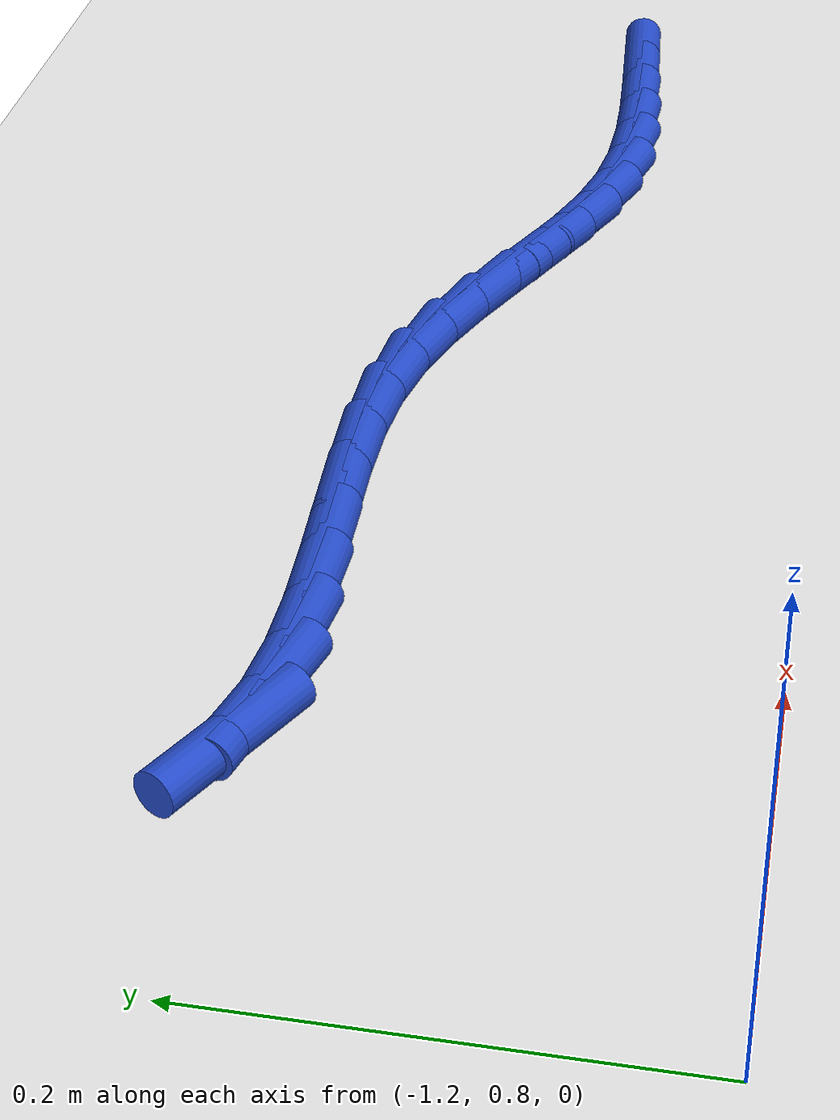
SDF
<sdf version="1.6">
 <world name="default">
  <model name="ground_plane">
   <static>1</static>
   <link name="link">
    <collision name="collision">
     <geometry><plane><normal>0 0 1</normal><size>100 100</size></plane></geometry>
     <surface><friction><ode><mu>100</mu><mu2>50</mu2></ode></friction></surface>
    </collision>
    <visual name="visual">
     <cast_shadows>0</cast_shadows>
     <geometry><plane><normal>0 0 1</normal><size>100 100</size></plane></geometry>
     <material>
      <script><uri>file://media/materials/scripts/gazebo.material</uri><name>Gazebo/WhiteGlow</name></script>
     </material>
    </visual>
   </link>
  </model>
  <model name="line">
   <link name="link_39">
    <pose>-0.465253103192613 0.9165433758420046 0.01 0 1.57 0.08127308688358488</pose>
    <collision name="collision">
     <geometry><cylinder><radius>0.01</radius><length>0.08</length></cylinder></geometry>
    </collision>
    <visual name="visual">
     <material>
      <script><name>Gazebo/Blue</name><uri>file://media/materials/scripts/gazebo.material</uri></script>
     </material>
     <geometry><cylinder><radius>0.01</radius><length>0.08</length></cylinder></geometry>
    </visual>
   </link>
   <link name="link_40">
    <pose>-0.49563035522320587 0.9140690725473415 0.01 0 1.57 0.06996432766600989</pose>
    <collision name="collision">
     <geometry><cylinder><radius>0.01</radius><length>0.08</length></cylinder></geometry>
    </collision>
    <visual name="visual">
     <material>
      <script><name>Gazebo/Blue</name><uri>file://media/materials/scripts/gazebo.material</uri></script>
     </material>
     <geometry><cylinder><radius>0.01</radius><length>0.08</length></cylinder></geometry>
    </visual>
   </link>
   <link name="link_41">
    <pose>-0.5263170755426992 0.9119185867652225 0.01 0 1.57 0.03216959325350356</pose>
    <collision name="collision">
     <geometry><cylinder><radius>0.01</radius><length>0.08</length></cylinder></geometry>
    </collision>
    <visual name="visual">
     <material>
      <script><name>Gazebo/Blue</name><uri>file://media/materials/scripts/gazebo.material</uri></script>
     </material>
     <geometry><cylinder><radius>0.01</radius><length>0.08</length></cylinder></geometry>
    </visual>
   </link>
   <link name="link_42">
    <pose>-0.5568290466043099 0.9109366903275481 0.01 0 1.57 -0.03453771581233891</pose>
    <collision name="collision">
     <geometry><cylinder><radius>0.01</radius><length>0.08</length></cylinder></geometry>
    </collision>
    <visual name="visual">
     <material>
      <script><name>Gazebo/Blue</name><uri>file://media/materials/scripts/gazebo.material</uri></script>
     </material>
     <geometry><cylinder><radius>0.01</radius><length>0.08</length></cylinder></geometry>
    </visual>
   </link>
   <link name="link_43">
    <pose>-0.5866820508612548 0.91196815506622 0.01 0 1.57 -0.13461835076470766</pose>
    <collision name="collision">
     <geometry><cylinder><radius>0.01</radius><length>0.08</length></cylinder></geometry>
    </collision>
    <visual name="visual">
     <material>
      <script><name>Gazebo/Blue</name><uri>file://media/materials/scripts/gazebo.material</uri></script>
     </material>
     <geometry><cylinder><radius>0.01</radius><length>0.08</length></cylinder></geometry>
    </visual>
   </link>
   <link name="link_44">
    <pose>-0.6153924740073257 0.9158566223719713 0.01 0 1.57 -0.2557452301849412</pose>
    <collision name="collision">
     <geometry><cylinder><radius>0.01</radius><length>0.08</length></cylinder></geometry>
    </collision>
    <visual name="visual">
     <material>
      <script><name>Gazebo/Blue</name><uri>file://media/materials/scripts/gazebo.material</uri></script>
     </material>
     <geometry><cylinder><radius>0.01</radius><length>0.08</length></cylinder></geometry>
    </visual>
   </link>
   <link name="link_45">
    <pose>-0.6427143023420219 0.9230004825749244 0.01 0 1.57 -0.3527483318246726</pose>
    <collision name="collision">
     <geometry><cylinder><radius>0.01</radius><length>0.08</length></cylinder></geometry>
    </collision>
    <visual name="visual">
     <material>
      <script><name>Gazebo/Blue</name><uri>file://media/materials/scripts/gazebo.material</uri></script>
     </material>
     <geometry><cylinder><radius>0.01</radius><length>0.08</length></cylinder></geometry>
    </visual>
   </link>
   <link name="link_46">
    <pose>-0.668999620255764 0.9326773215840979 0.01 0 1.57 -0.41478934054829303</pose>
    <collision name="collision">
     <geometry><cylinder><radius>0.01</radius><length>0.08</length></cylinder></geometry>
    </collision>
    <visual name="visual">
     <material>
      <script><name>Gazebo/Blue</name><uri>file://media/materials/scripts/gazebo.material</uri></script>
     </material>
     <geometry><cylinder><radius>0.01</radius><length>0.08</length></cylinder></geometry>
    </visual>
   </link>
   <link name="link_47">
    <pose>-0.6946931450149568 0.9439911361623159 0.01 0 1.57 -0.44089733472905185</pose>
    <collision name="collision">
     <geometry><cylinder><radius>0.01</radius><length>0.08</length></cylinder></geometry>
    </collision>
    <visual name="visual">
     <material>
      <script><name>Gazebo/Blue</name><uri>file://media/materials/scripts/gazebo.material</uri></script>
     </material>
     <geometry><cylinder><radius>0.01</radius><length>0.08</length></cylinder></geometry>
    </visual>
   </link>
   <link name="link_48">
    <pose>-0.720239593886006 0.9560459230724025 0.01 0 1.57 -0.4315051273858564</pose>
    <collision name="collision">
     <geometry><cylinder><radius>0.01</radius><length>0.08</length></cylinder></geometry>
    </collision>
    <visual name="visual">
     <material>
      <script><name>Gazebo/Blue</name><uri>file://media/materials/scripts/gazebo.material</uri></script>
     </material>
     <geometry><cylinder><radius>0.01</radius><length>0.08</length></cylinder></geometry>
    </visual>
   </link>
   <link name="link_49">
    <pose>-0.7460836841353166 0.967945679077182 0.01 0 1.57 -0.3874306257747195</pose>
    <collision name="collision">
     <geometry><cylinder><radius>0.01</radius><length>0.08</length></cylinder></geometry>
    </collision>
    <visual name="visual">
     <material>
      <script><name>Gazebo/Blue</name><uri>file://media/materials/scripts/gazebo.material</uri></script>
     </material>
     <geometry><cylinder><radius>0.01</radius><length>0.08</length></cylinder></geometry>
    </visual>
   </link>
   <link name="link_50">
    <pose>-0.7726701330292942 0.9787944009394788 0.01 0 1.57 -0.3101652433635925</pose>
    <collision name="collision">
     <geometry><cylinder><radius>0.01</radius><length>0.08</length></cylinder></geometry>
    </collision>
    <visual name="visual">
     <material>
      <script><name>Gazebo/Blue</name><uri>file://media/materials/scripts/gazebo.material</uri></script>
     </material>
     <geometry><cylinder><radius>0.01</radius><length>0.08</length></cylinder></geometry>
    </visual>
   </link>
   <link name="link_51">
    <pose>-0.8004436578343439 0.987696085422117 0.01 0 1.57 -0.20323898843638474</pose>
    <collision name="collision">
     <geometry><cylinder><radius>0.01</radius><length>0.08</length></cylinder></geometry>
    </collision>
    <visual name="visual">
     <material>
      <script><name>Gazebo/Blue</name><uri>file://media/materials/scripts/gazebo.material</uri></script>
     </material>
     <geometry><cylinder><radius>0.01</radius><length>0.08</length></cylinder></geometry>
    </visual>
   </link>
   <link name="link_52">
    <pose>-0.8298482817374023 0.9937559180988316 0.01 0 1.57 -0.08980574394000662</pose>
    <collision name="collision">
     <geometry><cylinder><radius>0.01</radius><length>0.08</length></cylinder></geometry>
    </collision>
    <visual name="visual">
     <material>
      <script><name>Gazebo/Blue</name><uri>file://media/materials/scripts/gazebo.material</uri></script>
     </material>
     <geometry><cylinder><radius>0.01</radius><length>0.08</length></cylinder></geometry>
    </visual>
   </link>
   <link name="link_53">
    <pose>-0.8610442969728522 0.9965650554833674 0.01 0 1.57 -0.011738203919469652</pose>
    <collision name="collision">
     <geometry><cylinder><radius>0.01</radius><length>0.08</length></cylinder></geometry>
    </collision>
    <visual name="visual">
     <material>
      <script><name>Gazebo/Blue</name><uri>file://media/materials/scripts/gazebo.material</uri></script>
     </material>
     <geometry><cylinder><radius>0.01</radius><length>0.08</length></cylinder></geometry>
    </visual>
   </link>
   <link name="link_54">
    <pose>-0.8934732398634755 0.9969457305118953 0.01 0 1.57 0.03131801979265752</pose>
    <collision name="collision">
     <geometry><cylinder><radius>0.01</radius><length>0.08</length></cylinder></geometry>
    </collision>
    <visual name="visual">
     <material>
      <script><name>Gazebo/Blue</name><uri>file://media/materials/scripts/gazebo.material</uri></script>
     </material>
     <geometry><cylinder><radius>0.01</radius><length>0.08</length></cylinder></geometry>
    </visual>
   </link>
   <link name="link_55">
    <pose>-0.9264645523620343 0.9959121700002723 0.01 0 1.57 0.04356830733985392</pose>
    <collision name="collision">
     <geometry><cylinder><radius>0.01</radius><length>0.08</length></cylinder></geometry>
    </collision>
    <visual name="visual">
     <material>
      <script><name>Gazebo/Blue</name><uri>file://media/materials/scripts/gazebo.material</uri></script>
     </material>
     <geometry><cylinder><radius>0.01</radius><length>0.08</length></cylinder></geometry>
    </visual>
   </link>
   <link name="link_56">
    <pose>-0.9593476764212902 0.9944786007643565 0.01 0 1.57 0.025515938390088155</pose>
    <collision name="collision">
     <geometry><cylinder><radius>0.01</radius><length>0.08</length></cylinder></geometry>
    </collision>
    <visual name="visual">
     <material>
      <script><name>Gazebo/Blue</name><uri>file://media/materials/scripts/gazebo.material</uri></script>
     </material>
     <geometry><cylinder><radius>0.01</radius><length>0.08</length></cylinder></geometry>
    </visual>
   </link>
   <link name="link_57">
    <pose>-0.9914520539940062 0.9936592496200052 0.01 0 1.57 -0.026387344268824643</pose>
    <collision name="collision">
     <geometry><cylinder><radius>0.01</radius><length>0.08</length></cylinder></geometry>
    </collision>
    <visual name="visual">
     <material>
      <script><name>Gazebo/Blue</name><uri>file://media/materials/scripts/gazebo.material</uri></script>
     </material>
     <geometry><cylinder><radius>0.01</radius><length>0.08</length></cylinder></geometry>
    </visual>
   </link>
   <link name="link_58">
    <pose>-1.0221071270329445 0.9944683433830752 0.01 0 1.57 -0.12038024804437959</pose>
    <collision name="collision">
     <geometry><cylinder><radius>0.01</radius><length>0.08</length></cylinder></geometry>
    </collision>
    <visual name="visual">
     <material>
      <script><name>Gazebo/Blue</name><uri>file://media/materials/scripts/gazebo.material</uri></script>
     </material>
     <geometry><cylinder><radius>0.01</radius><length>0.08</length></cylinder></geometry>
    </visual>
   </link>
   <link name="link_59">
    <pose>-1.0506423374908676 0.9979201088694247 0.01 0 1.57 -0.2694076243725932</pose>
    <collision name="collision">
     <geometry><cylinder><radius>0.01</radius><length>0.08</length></cylinder></geometry>
    </collision>
    <visual name="visual">
     <material>
      <script><name>Gazebo/Blue</name><uri>file://media/materials/scripts/gazebo.material</uri></script>
     </material>
     <geometry><cylinder><radius>0.01</radius><length>0.08</length></cylinder></geometry>
    </visual>
   </link>
   <link name="link_60">
    <pose>-1.0763871273205372 1.0050287728949108 0.01 0 1.57 -0.48628484540770645</pose>
    <collision name="collision">
     <geometry><cylinder><radius>0.01</radius><length>0.08</length></cylinder></geometry>
    </collision>
    <visual name="visual">
     <material>
      <script><name>Gazebo/Blue</name><uri>file://media/materials/scripts/gazebo.material</uri></script>
     </material>
     <geometry><cylinder><radius>0.01</radius><length>0.08</length></cylinder></geometry>
    </visual>
   </link>
  </model>
 </world>
</sdf>
